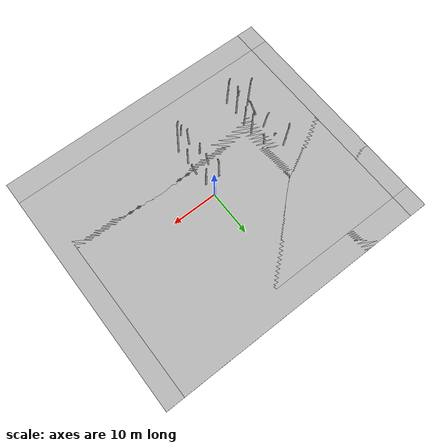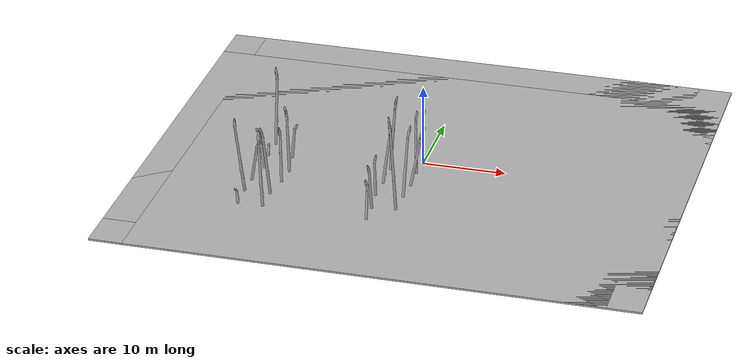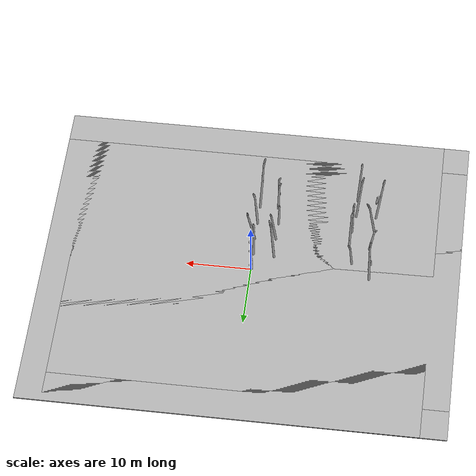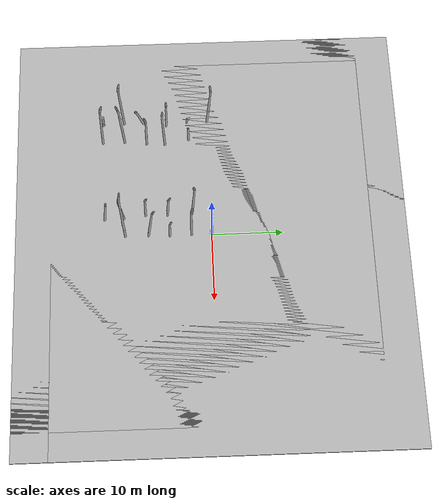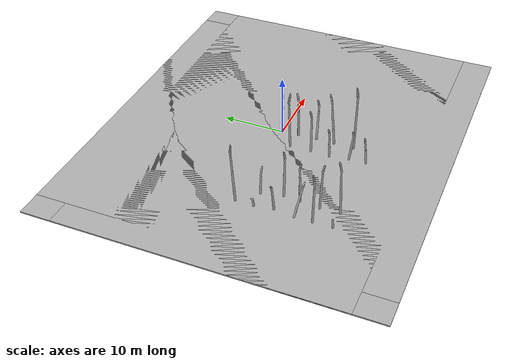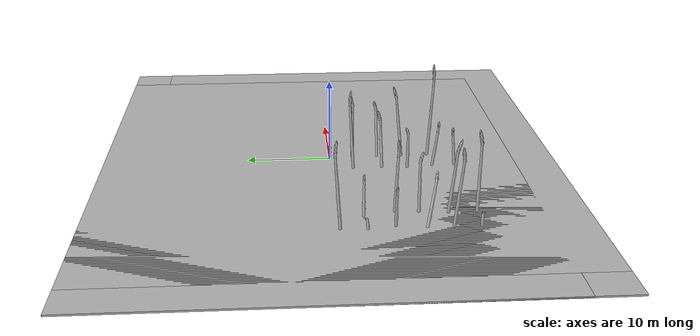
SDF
<sdf version="1.6">
 <world name="default">
  <model name="mud_box">
   <static>1</static>
   <link name="link">
    <collision name="collision"><geometry><box><size>120 100 2</size></box></geometry></collision>
    <visual name="visual_1">
     <pose>-2 2.5 0 0 -0 0</pose>
     <cast_shadows>0</cast_shadows>
     <geometry><box><size>60 50 0.2</size></box></geometry>
     <material>
      <script>
       <uri>model://mud_box/materials/scripts</uri>
       <uri>model://mud_box/materials/textures</uri>
       <name>vrc/mud</name>
      </script>
     </material>
    </visual>
    <visual name="visual_2">
     <pose>2 2.5 0 0 -0 0</pose>
     <cast_shadows>0</cast_shadows>
     <geometry><box><size>60 50 0.2</size></box></geometry>
     <material>
      <script>
       <uri>model://mud_box/materials/scripts</uri>
       <uri>model://mud_box/materials/textures</uri>
       <name>vrc/mud</name>
      </script>
     </material>
    </visual>
    <visual name="visual_3">
     <pose>2 -2.5 0 0 -0 0</pose>
     <cast_shadows>0</cast_shadows>
     <geometry><box><size>60 50 0.2</size></box></geometry>
     <material>
      <script>
       <uri>model://mud_box/materials/scripts</uri>
       <uri>model://mud_box/materials/textures</uri>
       <name>vrc/mud</name>
      </script>
     </material>
    </visual>
    <visual name="visual_4">
     <pose>-2 -2.5 0 0 -0 0</pose>
     <cast_shadows>0</cast_shadows>
     <geometry><box><size>60 50 0.2</size></box></geometry>
     <material>
      <script>
       <uri>model://mud_box/materials/scripts</uri>
       <uri>model://mud_box/materials/textures</uri>
       <name>vrc/mud</name>
      </script>
     </material>
    </visual>
   </link>
  </model>
  <model name="asparagus_0">
   <pose>-18.2681 -15.0809 0 0.032072 0.040383 -2.96891</pose>
   <static>1</static>
   <link name="asparagus_0">
    <visual name="visual">
     <geometry>
      <mesh><uri>model://Asparagus/meshes/asparagus.obj</uri><scale>0.4 0.4 0.094438</scale></mesh>
     </geometry>
    </visual>
    <collision name="collision">
     <geometry>
      <mesh><uri>model://Asparagus/meshes/asparagus.obj</uri><scale>0.4 0.4 0.094438</scale></mesh>
     </geometry>
    </collision>
   </link>
  </model>
  <model name="asparagus_1">
   <pose>-2.90043 -14.9878 0 0.083525 -0.029632 -3.08528</pose>
   <static>1</static>
   <link name="asparagus_1">
    <visual name="visual">
     <geometry>
      <mesh><uri>model://Asparagus/meshes/asparagus.obj</uri><scale>0.4 0.4 0.239174</scale></mesh>
     </geometry>
    </visual>
    <collision name="collision">
     <geometry>
      <mesh><uri>model://Asparagus/meshes/asparagus.obj</uri><scale>0.4 0.4 0.239174</scale></mesh>
     </geometry>
    </collision>
   </link>
  </model>
  <model name="asparagus_3">
   <pose>-18.2648 -11.9328 0 -0.101328 -0.062203 1.58194</pose>
   <static>1</static>
   <link name="asparagus_3">
    <visual name="visual">
     <geometry>
      <mesh><uri>model://Asparagus/meshes/asparagus.obj</uri><scale>0.4 0.4 0.463252</scale></mesh>
     </geometry>
    </visual>
    <collision name="collision">
     <geometry>
      <mesh><uri>model://Asparagus/meshes/asparagus.obj</uri><scale>0.4 0.4 0.463252</scale></mesh>
     </geometry>
    </collision>
   </link>
  </model>
  <model name="asparagus_4">
   <pose>-2.99123 -12.1827 0 -0.107474 -0.057073 2.58708</pose>
   <static>1</static>
   <link name="asparagus_4">
    <visual name="visual">
     <geometry>
      <mesh><uri>model://Asparagus/meshes/asparagus.obj</uri><scale>0.4 0.4 0.284204</scale></mesh>
     </geometry>
    </visual>
    <collision name="collision">
     <geometry>
      <mesh><uri>model://Asparagus/meshes/asparagus.obj</uri><scale>0.4 0.4 0.284204</scale></mesh>
     </geometry>
    </collision>
   </link>
  </model>
  <model name="asparagus_6">
   <pose>-18.2066 -9.22458 0 0.187602 0.17855 0.075861</pose>
   <static>1</static>
   <link name="asparagus_6">
    <visual name="visual">
     <geometry>
      <mesh><uri>model://Asparagus/meshes/asparagus.obj</uri><scale>0.4 0.4 0.294524</scale></mesh>
     </geometry>
    </visual>
    <collision name="collision">
     <geometry>
      <mesh><uri>model://Asparagus/meshes/asparagus.obj</uri><scale>0.4 0.4 0.294524</scale></mesh>
     </geometry>
    </collision>
   </link>
  </model>
  <model name="asparagus_7">
   <pose>-3.23085 -9.1039 0 -0.027045 -0.01204 1.06491</pose>
   <static>1</static>
   <link name="asparagus_7">
    <visual name="visual">
     <geometry>
      <mesh><uri>model://Asparagus/meshes/asparagus.obj</uri><scale>0.4 0.4 0.251741</scale></mesh>
     </geometry>
    </visual>
    <collision name="collision">
     <geometry>
      <mesh><uri>model://Asparagus/meshes/asparagus.obj</uri><scale>0.4 0.4 0.251741</scale></mesh>
     </geometry>
    </collision>
   </link>
  </model>
  <model name="asparagus_9">
   <pose>-17.8759 -5.96734 0 0.020636 0.123166 -3.13346</pose>
   <static>1</static>
   <link name="asparagus_9">
    <visual name="visual">
     <geometry>
      <mesh><uri>model://Asparagus/meshes/asparagus.obj</uri><scale>0.4 0.4 0.25085</scale></mesh>
     </geometry>
    </visual>
    <collision name="collision">
     <geometry>
      <mesh><uri>model://Asparagus/meshes/asparagus.obj</uri><scale>0.4 0.4 0.25085</scale></mesh>
     </geometry>
    </collision>
   </link>
  </model>
  <model name="asparagus_10">
   <pose>-3.22718 -6.00749 0 0.119038 0.036834 1.52857</pose>
   <static>1</static>
   <link name="asparagus_10">
    <visual name="visual">
     <geometry>
      <mesh><uri>model://Asparagus/meshes/asparagus.obj</uri><scale>0.4 0.4 0.343855</scale></mesh>
     </geometry>
    </visual>
    <collision name="collision">
     <geometry>
      <mesh><uri>model://Asparagus/meshes/asparagus.obj</uri><scale>0.4 0.4 0.343855</scale></mesh>
     </geometry>
    </collision>
   </link>
  </model>
  <model name="asparagus_12">
   <pose>-18.2738 -2.88384 0 0.053456 0.07412 1.80319</pose>
   <static>1</static>
   <link name="asparagus_12">
    <visual name="visual">
     <geometry>
      <mesh><uri>model://Asparagus/meshes/asparagus.obj</uri><scale>0.4 0.4 0.072587</scale></mesh>
     </geometry>
    </visual>
    <collision name="collision">
     <geometry>
      <mesh><uri>model://Asparagus/meshes/asparagus.obj</uri><scale>0.4 0.4 0.072587</scale></mesh>
     </geometry>
    </collision>
   </link>
  </model>
  <model name="asparagus_13">
   <pose>-3.2411 -2.75427 0 -0.081579 -0.001694 -0.796275</pose>
   <static>1</static>
   <link name="asparagus_13">
    <visual name="visual">
     <geometry>
      <mesh><uri>model://Asparagus/meshes/asparagus.obj</uri><scale>0.4 0.4 0.468981</scale></mesh>
     </geometry>
    </visual>
    <collision name="collision">
     <geometry>
      <mesh><uri>model://Asparagus/meshes/asparagus.obj</uri><scale>0.4 0.4 0.468981</scale></mesh>
     </geometry>
    </collision>
   </link>
  </model>
  <model name="asparagus_15">
   <pose>-18.2797 -0.161785 0 0.014742 -0.073989 -2.06704</pose>
   <static>1</static>
   <link name="asparagus_15">
    <visual name="visual">
     <geometry>
      <mesh><uri>model://Asparagus/meshes/asparagus.obj</uri><scale>0.4 0.4 0.490926</scale></mesh>
     </geometry>
    </visual>
    <collision name="collision">
     <geometry>
      <mesh><uri>model://Asparagus/meshes/asparagus.obj</uri><scale>0.4 0.4 0.490926</scale></mesh>
     </geometry>
    </collision>
   </link>
  </model>
  <model name="asparagus_30">
   <pose>-15.1211 -15.0409 0 -0.043898 0.000945 1.46959</pose>
   <static>1</static>
   <link name="asparagus_30">
    <visual name="visual">
     <geometry>
      <mesh><uri>model://Asparagus/meshes/asparagus.obj</uri><scale>0.4 0.4 0.4772</scale></mesh>
     </geometry>
    </visual>
    <collision name="collision">
     <geometry>
      <mesh><uri>model://Asparagus/meshes/asparagus.obj</uri><scale>0.4 0.4 0.4772</scale></mesh>
     </geometry>
    </collision>
   </link>
  </model>
  <model name="asparagus_33">
   <pose>-15.2269 -12.0959 0 0.053892 0.082965 -1.88167</pose>
   <static>1</static>
   <link name="asparagus_33">
    <visual name="visual">
     <geometry>
      <mesh><uri>model://Asparagus/meshes/asparagus.obj</uri><scale>0.4 0.4 0.43871</scale></mesh>
     </geometry>
    </visual>
    <collision name="collision">
     <geometry>
      <mesh><uri>model://Asparagus/meshes/asparagus.obj</uri><scale>0.4 0.4 0.43871</scale></mesh>
     </geometry>
    </collision>
   </link>
  </model>
  <model name="asparagus_34">
   <pose>-0.121336 -11.9851 0 -0.060611 0.00233 2.29976</pose>
   <static>1</static>
   <link name="asparagus_34">
    <visual name="visual">
     <geometry>
      <mesh><uri>model://Asparagus/meshes/asparagus.obj</uri><scale>0.4 0.4 0.584865</scale></mesh>
     </geometry>
    </visual>
    <collision name="collision">
     <geometry>
      <mesh><uri>model://Asparagus/meshes/asparagus.obj</uri><scale>0.4 0.4 0.584865</scale></mesh>
     </geometry>
    </collision>
   </link>
  </model>
  <model name="asparagus_36">
   <pose>-14.8409 -8.95421 0 0.013423 -0.019246 -1.80688</pose>
   <static>1</static>
   <link name="asparagus_36">
    <visual name="visual">
     <geometry>
      <mesh><uri>model://Asparagus/meshes/asparagus.obj</uri><scale>0.4 0.4 0.35049</scale></mesh>
     </geometry>
    </visual>
    <collision name="collision">
     <geometry>
      <mesh><uri>model://Asparagus/meshes/asparagus.obj</uri><scale>0.4 0.4 0.35049</scale></mesh>
     </geometry>
    </collision>
   </link>
  </model>
  <model name="asparagus_37">
   <pose>-0.022071 -8.77018 0 0.002155 0.104267 1.10263</pose>
   <static>1</static>
   <link name="asparagus_37">
    <visual name="visual">
     <geometry>
      <mesh><uri>model://Asparagus/meshes/asparagus.obj</uri><scale>0.4 0.4 0.436154</scale></mesh>
     </geometry>
    </visual>
    <collision name="collision">
     <geometry>
      <mesh><uri>model://Asparagus/meshes/asparagus.obj</uri><scale>0.4 0.4 0.436154</scale></mesh>
     </geometry>
    </collision>
   </link>
  </model>
  <model name="asparagus_39">
   <pose>-14.7379 -6.15764 0 -0.034276 -0.00489 2.68933</pose>
   <static>1</static>
   <link name="asparagus_39">
    <visual name="visual">
     <geometry>
      <mesh><uri>model://Asparagus/meshes/asparagus.obj</uri><scale>0.4 0.4 0.420156</scale></mesh>
     </geometry>
    </visual>
    <collision name="collision">
     <geometry>
      <mesh><uri>model://Asparagus/meshes/asparagus.obj</uri><scale>0.4 0.4 0.420156</scale></mesh>
     </geometry>
    </collision>
   </link>
  </model>
  <model name="asparagus_40">
   <pose>-0.048743 -5.73829 0 0.171536 -0.090346 2.09212</pose>
   <static>1</static>
   <link name="asparagus_40">
    <visual name="visual">
     <geometry>
      <mesh><uri>model://Asparagus/meshes/asparagus.obj</uri><scale>0.4 0.4 0.338579</scale></mesh>
     </geometry>
    </visual>
    <collision name="collision">
     <geometry>
      <mesh><uri>model://Asparagus/meshes/asparagus.obj</uri><scale>0.4 0.4 0.338579</scale></mesh>
     </geometry>
    </collision>
   </link>
  </model>
  <model name="asparagus_42">
   <pose>-15.2328 -2.79842 0 -0.00343 0.085632 -0.063375</pose>
   <static>1</static>
   <link name="asparagus_42">
    <visual name="visual">
     <geometry>
      <mesh><uri>model://Asparagus/meshes/asparagus.obj</uri><scale>0.4 0.4 0.227099</scale></mesh>
     </geometry>
    </visual>
    <collision name="collision">
     <geometry>
      <mesh><uri>model://Asparagus/meshes/asparagus.obj</uri><scale>0.4 0.4 0.227099</scale></mesh>
     </geometry>
    </collision>
   </link>
  </model>
  <model name="asparagus_43">
   <pose>-0.031237 -2.70465 0 -0.013566 -0.008092 1.19508</pose>
   <static>1</static>
   <link name="asparagus_43">
    <visual name="visual">
     <geometry>
      <mesh><uri>model://Asparagus/meshes/asparagus.obj</uri><scale>0.4 0.4 0.394879</scale></mesh>
     </geometry>
    </visual>
    <collision name="collision">
     <geometry>
      <mesh><uri>model://Asparagus/meshes/asparagus.obj</uri><scale>0.4 0.4 0.394879</scale></mesh>
     </geometry>
    </collision>
   </link>
  </model>
  <model name="asparagus_60">
   <static>1</static>
   <link name="asparagus_60">
    <visual name="visual">
     <geometry>
      <mesh><uri>model://Asparagus/meshes/asparagus.obj</uri><scale>0.4 0.4 0.057613</scale></mesh>
     </geometry>
    </visual>
    <collision name="collision">
     <geometry>
      <mesh><uri>model://Asparagus/meshes/asparagus.obj</uri><scale>0.4 0.4 0.057613</scale></mesh>
     </geometry>
    </collision>
   </link>
  </model>
  <model name="asparagus_61">
   <static>1</static>
   <link name="asparagus_61">
    <visual name="visual">
     <geometry>
      <mesh><uri>model://Asparagus/meshes/asparagus.obj</uri><scale>0.4 0.4 0.233358</scale></mesh>
     </geometry>
    </visual>
    <collision name="collision">
     <geometry>
      <mesh><uri>model://Asparagus/meshes/asparagus.obj</uri><scale>0.4 0.4 0.233358</scale></mesh>
     </geometry>
    </collision>
   </link>
  </model>
  <model name="asparagus_62">
   <static>1</static>
   <link name="asparagus_62">
    <visual name="visual">
     <geometry>
      <mesh><uri>model://Asparagus/meshes/asparagus.obj</uri><scale>0.4 0.4 0.344924</scale></mesh>
     </geometry>
    </visual>
    <collision name="collision">
     <geometry>
      <mesh><uri>model://Asparagus/meshes/asparagus.obj</uri><scale>0.4 0.4 0.344924</scale></mesh>
     </geometry>
    </collision>
   </link>
  </model>
 </world>
</sdf>
